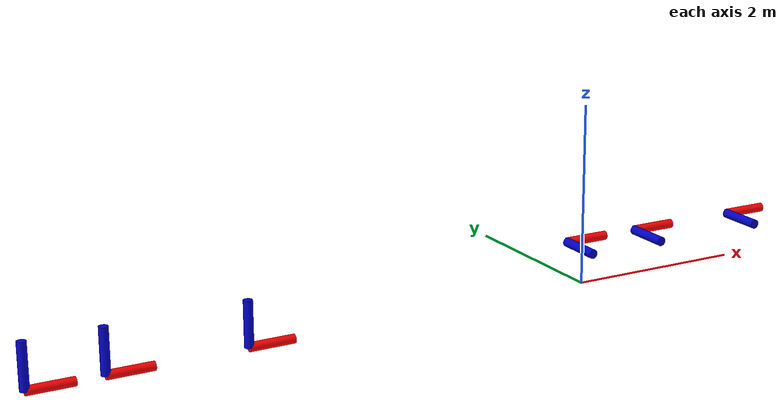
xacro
<robot name="dual_robot_system" xmlns:xacro="http://ros.org/wiki/xacro">

    <xacro:include filename="robot_a.urdf.xacro" />
    <xacro:include filename="robot_b.urdf.xacro" />

    <link name="world_frame"/>

    <xacro:robot_a prefix="A_"/>

    <joint name="world_to_robotA_base" type="fixed">
        <origin xyz="-2.0 0 0" rpy="0 0 0"/> <parent link="world_frame"/>
        <child link="A_link0_passive"/>
    </joint>

    <xacro:robot_b prefix="B_"/>

    <joint name="world_to_robotB_base" type="fixed">
        <origin xyz="2.0 0 0" rpy="0 0 0"/> <parent link="world_frame"/>
        <child link="B_link0_passive"/>
    </joint>

</robot>

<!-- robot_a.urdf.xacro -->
<robot name="robot_a" xmlns:xacro="http://ros.org/wiki/xacro">

    <xacro:macro name="robot_a" params="prefix">
        <material name="blue">
            <color rgba="0 0 .8 1"/>
        </material>
        <material name="red">
            <color rgba="1 0 0 1"/>
        </material>

        <link name="${prefix}link0_passive">
            <visual>
                <origin xyz="0 0 0" rpy="0 0 0"/>
                <geometry>
                    <cylinder length="0.0" radius="0.0"/>
                </geometry>
            </visual>
        </link>
        <link name="${prefix}link0_x_axis">
            <visual>
                <origin xyz="0 0 0" rpy="0 0 0"/>
                <geometry>
                    <cylinder length="0.0" radius="0.0"/>
                </geometry>
            </visual>
        </link>
        <joint name="${prefix}q0_x" type="fixed">
            <origin xyz="0 0 0" rpy="0 1.571 0"/>
            <parent link="${prefix}link0_passive"/>
            <child link="${prefix}link0_x_axis"/>
        </joint>

        <link name="${prefix}link1"/>
        <link name="${prefix}link1_x_axis">
            <visual>
                <origin xyz="0 0 0.25" rpy="0 0 0"/>
                <material name="red"/>
                <geometry>
                    <cylinder length="0.5" radius="0.05"/>
                </geometry>
            </visual>
        </link>
        <joint name="${prefix}q1" type="revolute">
            <origin xyz="0 0 0" rpy="0 0 0"/>
            <parent link="${prefix}link0_passive"/>
            <child link="${prefix}link1"/>
            <axis xyz="0 0 1"/>
            <limit lower="-1.57" upper="1.57" effort="1.0" velocity="1.0"/>
        </joint>
        <joint name="${prefix}q1_passive" type="fixed">
            <origin xyz="-2 0 0" rpy="0 0 0"/>
            <parent link="${prefix}link1"/>
            <child link="${prefix}link1_passive"/>
        </joint>
        <link name="${prefix}link1_passive">
            <visual>
                <origin xyz="0 0 0.25" rpy="0 0 0"/>
                <material name="blue"/>
                <geometry>
                    <cylinder length="0.5" radius="0.05"/>
                </geometry>
            </visual>
        </link>
        <joint name="${prefix}q1_x" type="fixed">
            <origin xyz="0 0 0" rpy="0 1.571 0"/>
            <parent link="${prefix}link1_passive"/>
            <child link="${prefix}link1_x_axis"/>
        </joint>

        <link name="${prefix}link2"/>
        <link name="${prefix}link2_x_axis">
            <visual>
                <origin xyz="0 0 0.25" rpy="0 0 0"/>
                <material name="red"/>
                <geometry>
                    <cylinder length="0.5" radius="0.05"/>
                </geometry>
            </visual>
        </link>
        <joint name="${prefix}q2" type="revolute">
            <origin xyz="0 0 0" rpy="0 0 0"/>
            <parent link="${prefix}link1_passive"/>
            <child link="${prefix}link2"/>
            <axis xyz="0 0 1"/>
            <limit lower="-1.57" upper="1.57" effort="1.0" velocity="1.0"/>
        </joint>
        <joint name="${prefix}q2_passive" type="fixed">
            <origin xyz="-1.5 0 0" rpy="0 0 0"/>
            <parent link="${prefix}link2"/>
            <child link="${prefix}link2_passive"/>
        </joint>
        <link name="${prefix}link2_passive">
            <visual>
                <origin xyz="0 0 0.25" rpy="0 0 0"/>
                <material name="blue"/>
                <geometry>
                    <cylinder length="0.5" radius="0.05"/>
                </geometry>
            </visual>
        </link>
        <joint name="${prefix}q2_x" type="fixed">
            <origin xyz="0 0 0" rpy="0 1.571 0"/>
            <parent link="${prefix}link2_passive"/>
            <child link="${prefix}link2_x_axis"/>
        </joint>

        <link name="${prefix}link3"/>
        <link name="${prefix}link3_x_axis">
            <visual>
                <origin xyz="0 0 0.25" rpy="0 0 0"/>
                <material name="red"/>
                <geometry>
                    <cylinder length="0.5" radius="0.05"/>
                </geometry>
            </visual>
        </link>
        <joint name="${prefix}q3" type="revolute">
            <origin xyz="0 0 0" rpy="0 0 0"/>
            <parent link="${prefix}link2_passive"/>
            <child link="${prefix}link3"/>
            <axis xyz="0 0 1"/>
            <limit lower="-1.57" upper="1.57" effort="1.0" velocity="1.0"/>
        </joint>
        <joint name="${prefix}q3_passive" type="fixed">
            <origin xyz="-0.8 0 0" rpy="0 0 0"/>
            <parent link="${prefix}link3"/>
            <child link="${prefix}link3_passive"/>
        </joint>
        <link name="${prefix}link3_passive">
            <visual>
                <origin xyz="0 0 0.25" rpy="0 0 0"/>
                <material name="blue"/>
                <geometry>
                    <cylinder length="0.5" radius="0.05"/>
                </geometry>
            </visual>
        </link>
        <joint name="${prefix}q3_x" type="fixed">
            <origin xyz="0 0 0" rpy="0 1.571 0"/>
            <parent link="${prefix}link3_passive"/>
            <child link="${prefix}link3_x_axis"/>
        </joint>
    </xacro:macro>
</robot>

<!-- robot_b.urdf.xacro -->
<robot name="robot_b" xmlns:xacro="http://ros.org/wiki/xacro">

    <xacro:macro name="robot_b" params="prefix">
        <material name="blue">
            <color rgba="0 0 .8 1"/>
        </material>
        <material name="red">
            <color rgba="1 0 0 1"/>
        </material>

        <link name="${prefix}link0_passive">
            <visual>
                <origin xyz="0 0 0" rpy="0 0 0"/>
                <geometry>
                    <cylinder length="0.0" radius="0.0"/>
                </geometry>
            </visual>
        </link>
        <link name="${prefix}link0_x_axis">
            <visual>
                <origin xyz="0 0 0" rpy="0 0 0"/>
                <geometry>
                    <cylinder length="0.0" radius="0.0"/>
                </geometry>
            </visual>
        </link>
        <joint name="${prefix}q0_x" type="fixed">
            <origin xyz="0 0 0" rpy="0 1.571 0"/>
            <parent link="${prefix}link0_passive"/>
            <child link="${prefix}link0_x_axis"/>
        </joint>

        <link name="${prefix}link1"/>
        <link name="${prefix}link1_x_axis">
            <visual>
                <origin xyz="0 0 0.25" rpy="0 0 0"/>
                <material name="red"/>
                <geometry>
                    <cylinder length="0.5" radius="0.05"/>
                </geometry>
            </visual>
        </link>
        <joint name="${prefix}q1" type="revolute">
            <origin xyz="0 0 0.5" rpy="0 0 0"/>
            <parent link="${prefix}link0_passive"/>
            <child link="${prefix}link1"/>
            <axis xyz="0 0 1"/>
            <limit lower="-1.57" upper="1.57" effort="1.0" velocity="1.0"/>
        </joint>
        <joint name="${prefix}q1_passive" type="fixed">
            <origin xyz="0 0 0" rpy="1.5707963267948966 0 0"/>
            <parent link="${prefix}link1"/>
            <child link="${prefix}link1_passive"/>
        </joint>
        <link name="${prefix}link1_passive">
            <visual>
                <origin xyz="0 0 0.25" rpy="0 0 0"/>
                <material name="blue"/>
                <geometry>
                    <cylinder length="0.5" radius="0.05"/>
                </geometry>
            </visual>
        </link>
        <joint name="${prefix}q1_x" type="fixed">
            <origin xyz="0 0 0" rpy="0 1.571 0"/>
            <parent link="${prefix}link1_passive"/>
            <child link="${prefix}link1_x_axis"/>
        </joint>

        <link name="${prefix}link2"/>
        <link name="${prefix}link2_x_axis">
            <visual>
                <origin xyz="0 0 0.25" rpy="0 0 0"/>
                <material name="red"/>
                <geometry>
                    <cylinder length="0.5" radius="0.05"/>
                </geometry>
            </visual>
        </link>
        <joint name="${prefix}q2" type="revolute">
            <origin xyz="0 0 0" rpy="0 0 0"/>
            <parent link="${prefix}link1_passive"/>
            <child link="${prefix}link2"/>
            <axis xyz="0 0 1"/>
            <limit lower="-1.57" upper="1.57" effort="1.0" velocity="1.0"/>
        </joint>
        <joint name="${prefix}q2_passive" type="fixed">
            <origin xyz="-1.3 0 0" rpy="0 0 0"/>
            <parent link="${prefix}link2"/>
            <child link="${prefix}link2_passive"/>
        </joint>
        <link name="${prefix}link2_passive">
            <visual>
                <origin xyz="0 0 0.25" rpy="0 0 0"/>
                <material name="blue"/>
                <geometry>
                    <cylinder length="0.5" radius="0.05"/>
                </geometry>
            </visual>
        </link>
        <joint name="${prefix}q2_x" type="fixed">
            <origin xyz="0 0 0" rpy="0 1.571 0"/>
            <parent link="${prefix}link2_passive"/>
            <child link="${prefix}link2_x_axis"/>
        </joint>

        <link name="${prefix}link3"/>
        <link name="${prefix}link3_x_axis">
            <visual>
                <origin xyz="0 0 0.25" rpy="0 0 0"/>
                <material name="red"/>
                <geometry>
                    <cylinder length="0.5" radius="0.05"/>
                </geometry>
            </visual>
        </link>
        <joint name="${prefix}q3" type="revolute">
            <origin xyz="0 0 0" rpy="0 0 0"/>
            <parent link="${prefix}link2_passive"/>
            <child link="${prefix}link3"/>
            <axis xyz="0 0 1"/>
            <limit lower="-1.57" upper="1.57" effort="1.0" velocity="1.0"/>
        </joint>
        <joint name="${prefix}q3_passive" type="fixed">
            <origin xyz="-0.9 0 0" rpy="0 0 0"/>
            <parent link="${prefix}link3"/>
            <child link="${prefix}link3_passive"/>
        </joint>
        <link name="${prefix}link3_passive">
            <visual>
                <origin xyz="0 0 0.25" rpy="0 0 0"/>
                <material name="blue"/>
                <geometry>
                    <cylinder length="0.5" radius="0.05"/>
                </geometry>
            </visual>
        </link>
        <joint name="${prefix}q3_x" type="fixed">
            <origin xyz="0 0 0" rpy="0 1.571 0"/>
            <parent link="${prefix}link3_passive"/>
            <child link="${prefix}link3_x_axis"/>
        </joint>
    </xacro:macro>
</robot>
